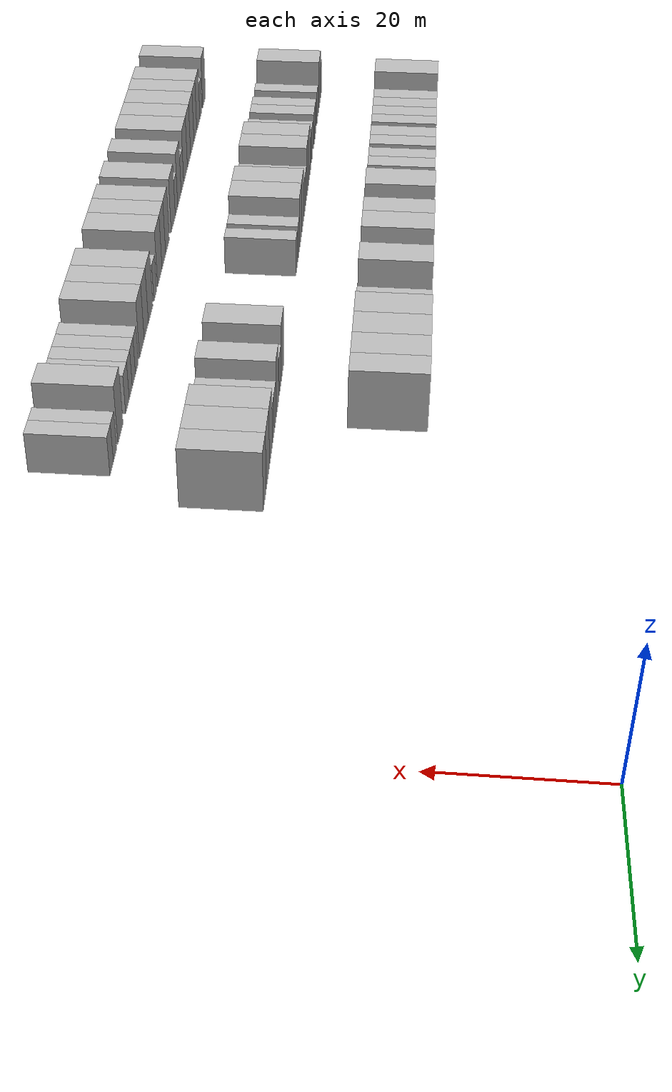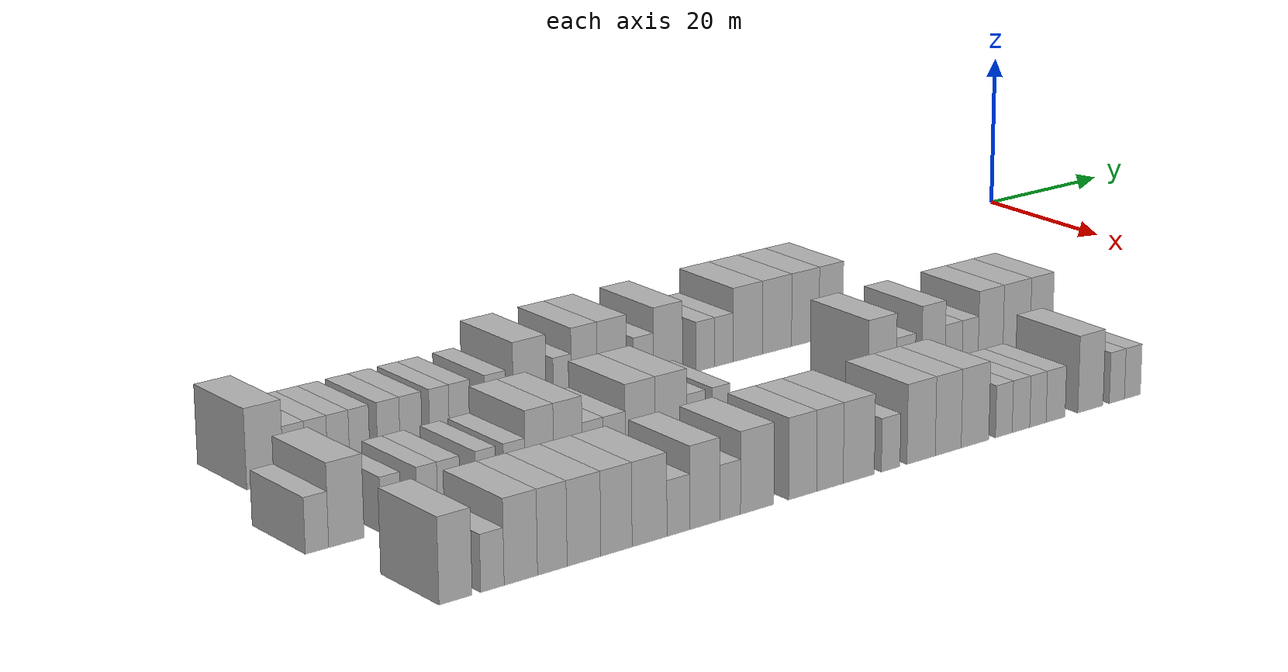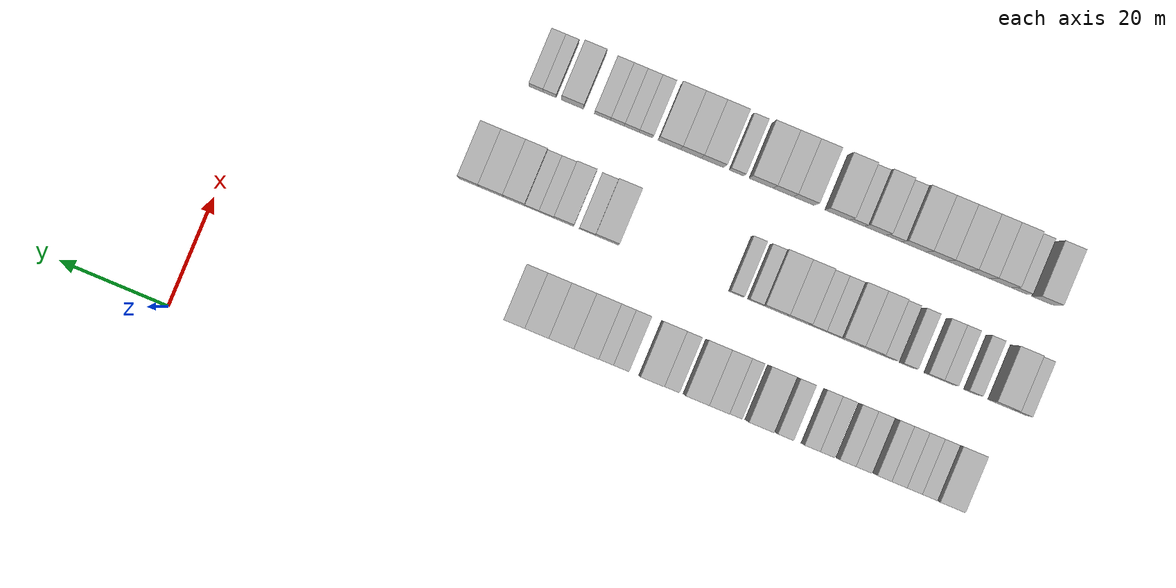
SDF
<sdf version="1.6">
 <world name="default">
  <model name="building_27">
   <static>1</static>
   <pose>25.0000 -134.0754 0 0.000000 0.000000 0.000000</pose>
   <link name="link">
    <pose>0 0 4.50 0 0 0</pose>
    <collision name="collision"><geometry><box><size>10.0000 4.4864 9.0000</size></box></geometry></collision>
    <visual name="visual">
     <cast_shadows>0</cast_shadows>
     <geometry><box><size>10.0000 4.4864 9.0000</size></box></geometry>
     <material>
      <script>
       <uri>model://HANNAS_wall/materials/scripts</uri>
       <uri>model://HANNAS_wall/materials/textures</uri>
       <name>vrc/HANNAS_wall</name>
      </script>
     </material>
    </visual>
   </link>
  </model>
  <model name="building_28">
   <static>1</static>
   <pose>25.0000 -130.4685 0 0.000000 0.000000 0.000000</pose>
   <link name="link">
    <pose>0 0 3.00 0 0 0</pose>
    <collision name="collision"><geometry><box><size>10.0000 2.7274 6.0000</size></box></geometry></collision>
    <visual name="visual">
     <cast_shadows>0</cast_shadows>
     <geometry><box><size>10.0000 2.7274 6.0000</size></box></geometry>
     <material>
      <script>
       <uri>model://HANNAS_wall/materials/scripts</uri>
       <uri>model://HANNAS_wall/materials/textures</uri>
       <name>vrc/HANNAS_wall</name>
      </script>
     </material>
    </visual>
   </link>
  </model>
  <model name="building_29">
   <static>1</static>
   <pose>25.0000 -127.7237 0 0.000000 0.000000 0.000000</pose>
   <link name="link">
    <pose>0 0 3.00 0 0 0</pose>
    <collision name="collision"><geometry><box><size>10.0000 2.7621 6.0000</size></box></geometry></collision>
    <visual name="visual">
     <cast_shadows>0</cast_shadows>
     <geometry><box><size>10.0000 2.7621 6.0000</size></box></geometry>
     <material>
      <script>
       <uri>model://HANNAS_wall/materials/scripts</uri>
       <uri>model://HANNAS_wall/materials/textures</uri>
       <name>vrc/HANNAS_wall</name>
      </script>
     </material>
    </visual>
   </link>
  </model>
  <model name="building_30">
   <static>1</static>
   <pose>25.0000 -124.9590 0 0.000000 0.000000 0.000000</pose>
   <link name="link">
    <pose>0 0 3.00 0 0 0</pose>
    <collision name="collision"><geometry><box><size>10.0000 2.7674 6.0000</size></box></geometry></collision>
    <visual name="visual">
     <cast_shadows>0</cast_shadows>
     <geometry><box><size>10.0000 2.7674 6.0000</size></box></geometry>
     <material>
      <script>
       <uri>model://HANNAS_wall/materials/scripts</uri>
       <uri>model://HANNAS_wall/materials/textures</uri>
       <name>vrc/HANNAS_wall</name>
      </script>
     </material>
    </visual>
   </link>
  </model>
  <model name="building_31">
   <static>1</static>
   <pose>25.0000 -122.2874 0 0.000000 0.000000 0.000000</pose>
   <link name="link">
    <pose>0 0 3.00 0 0 0</pose>
    <collision name="collision"><geometry><box><size>10.0000 2.5757 6.0000</size></box></geometry></collision>
    <visual name="visual">
     <cast_shadows>0</cast_shadows>
     <geometry><box><size>10.0000 2.5757 6.0000</size></box></geometry>
     <material>
      <script>
       <uri>model://HANNAS_wall/materials/scripts</uri>
       <uri>model://HANNAS_wall/materials/textures</uri>
       <name>vrc/HANNAS_wall</name>
      </script>
     </material>
    </visual>
   </link>
  </model>
  <model name="building_32">
   <static>1</static>
   <pose>25.0000 -118.5531 0 0.000000 0.000000 0.000000</pose>
   <link name="link">
    <pose>0 0 3.00 0 0 0</pose>
    <collision name="collision"><geometry><box><size>10.0000 2.8929 6.0000</size></box></geometry></collision>
    <visual name="visual">
     <cast_shadows>0</cast_shadows>
     <geometry><box><size>10.0000 2.8929 6.0000</size></box></geometry>
     <material>
      <script>
       <uri>model://HANNAS_wall/materials/scripts</uri>
       <uri>model://HANNAS_wall/materials/textures</uri>
       <name>vrc/HANNAS_wall</name>
      </script>
     </material>
    </visual>
   </link>
  </model>
  <model name="building_33">
   <static>1</static>
   <pose>25.0000 -115.6692 0 0.000000 0.000000 0.000000</pose>
   <link name="link">
    <pose>0 0 3.00 0 0 0</pose>
    <collision name="collision"><geometry><box><size>10.0000 2.8750 6.0000</size></box></geometry></collision>
    <visual name="visual">
     <cast_shadows>0</cast_shadows>
     <geometry><box><size>10.0000 2.8750 6.0000</size></box></geometry>
     <material>
      <script>
       <uri>model://HANNAS_wall/materials/scripts</uri>
       <uri>model://HANNAS_wall/materials/textures</uri>
       <name>vrc/HANNAS_wall</name>
      </script>
     </material>
    </visual>
   </link>
  </model>
  <model name="building_34">
   <static>1</static>
   <pose>25.0000 -111.9430 0 0.000000 0.000000 0.000000</pose>
   <link name="link">
    <pose>0 0 3.00 0 0 0</pose>
    <collision name="collision"><geometry><box><size>10.0000 2.5774 6.0000</size></box></geometry></collision>
    <visual name="visual">
     <cast_shadows>0</cast_shadows>
     <geometry><box><size>10.0000 2.5774 6.0000</size></box></geometry>
     <material>
      <script>
       <uri>model://HANNAS_wall/materials/scripts</uri>
       <uri>model://HANNAS_wall/materials/textures</uri>
       <name>vrc/HANNAS_wall</name>
      </script>
     </material>
    </visual>
   </link>
  </model>
  <model name="building_35">
   <static>1</static>
   <pose>25.0000 -109.2529 0 0.000000 0.000000 0.000000</pose>
   <link name="link">
    <pose>0 0 3.00 0 0 0</pose>
    <collision name="collision"><geometry><box><size>10.0000 2.8028 6.0000</size></box></geometry></collision>
    <visual name="visual">
     <cast_shadows>0</cast_shadows>
     <geometry><box><size>10.0000 2.8028 6.0000</size></box></geometry>
     <material>
      <script>
       <uri>model://HANNAS_wall/materials/scripts</uri>
       <uri>model://HANNAS_wall/materials/textures</uri>
       <name>vrc/HANNAS_wall</name>
      </script>
     </material>
    </visual>
   </link>
  </model>
  <model name="building_36">
   <static>1</static>
   <pose>25.0000 -104.4416 0 0.000000 0.000000 0.000000</pose>
   <link name="link">
    <pose>0 0 3.00 0 0 0</pose>
    <collision name="collision"><geometry><box><size>10.0000 2.8197 6.0000</size></box></geometry></collision>
    <visual name="visual">
     <cast_shadows>0</cast_shadows>
     <geometry><box><size>10.0000 2.8197 6.0000</size></box></geometry>
     <material>
      <script>
       <uri>model://HANNAS_wall/materials/scripts</uri>
       <uri>model://HANNAS_wall/materials/textures</uri>
       <name>vrc/HANNAS_wall</name>
      </script>
     </material>
    </visual>
   </link>
  </model>
  <model name="building_37">
   <static>1</static>
   <pose>25.0000 -99.7865 0 0.000000 0.000000 0.000000</pose>
   <link name="link">
    <pose>0 0 4.50 0 0 0</pose>
    <collision name="collision"><geometry><box><size>10.0000 4.4905 9.0000</size></box></geometry></collision>
    <visual name="visual">
     <cast_shadows>0</cast_shadows>
     <geometry><box><size>10.0000 4.4905 9.0000</size></box></geometry>
     <material>
      <script>
       <uri>model://HANNAS_wall/materials/scripts</uri>
       <uri>model://HANNAS_wall/materials/textures</uri>
       <name>vrc/HANNAS_wall</name>
      </script>
     </material>
    </visual>
   </link>
  </model>
  <model name="building_38">
   <static>1</static>
   <pose>25.0000 -95.2795 0 0.000000 0.000000 0.000000</pose>
   <link name="link">
    <pose>0 0 3.00 0 0 0</pose>
    <collision name="collision"><geometry><box><size>10.0000 2.5236 6.0000</size></box></geometry></collision>
    <visual name="visual">
     <cast_shadows>0</cast_shadows>
     <geometry><box><size>10.0000 2.5236 6.0000</size></box></geometry>
     <material>
      <script>
       <uri>model://HANNAS_wall/materials/scripts</uri>
       <uri>model://HANNAS_wall/materials/textures</uri>
       <name>vrc/HANNAS_wall</name>
      </script>
     </material>
    </visual>
   </link>
  </model>
  <model name="building_39">
   <static>1</static>
   <pose>25.0000 -92.2080 0 0.000000 0.000000 0.000000</pose>
   <link name="link">
    <pose>0 0 4.50 0 0 0</pose>
    <collision name="collision"><geometry><box><size>10.0000 3.6194 9.0000</size></box></geometry></collision>
    <visual name="visual">
     <cast_shadows>0</cast_shadows>
     <geometry><box><size>10.0000 3.6194 9.0000</size></box></geometry>
     <material>
      <script>
       <uri>model://HANNAS_wall/materials/scripts</uri>
       <uri>model://HANNAS_wall/materials/textures</uri>
       <name>vrc/HANNAS_wall</name>
      </script>
     </material>
    </visual>
   </link>
  </model>
  <model name="building_40">
   <static>1</static>
   <pose>25.0000 -88.2988 0 0.000000 0.000000 0.000000</pose>
   <link name="link">
    <pose>0 0 4.50 0 0 0</pose>
    <collision name="collision"><geometry><box><size>10.0000 4.1990 9.0000</size></box></geometry></collision>
    <visual name="visual">
     <cast_shadows>0</cast_shadows>
     <geometry><box><size>10.0000 4.1990 9.0000</size></box></geometry>
     <material>
      <script>
       <uri>model://HANNAS_wall/materials/scripts</uri>
       <uri>model://HANNAS_wall/materials/textures</uri>
       <name>vrc/HANNAS_wall</name>
      </script>
     </material>
    </visual>
   </link>
  </model>
  <model name="building_41">
   <static>1</static>
   <pose>25.0000 -83.7598 0 0.000000 0.000000 0.000000</pose>
   <link name="link">
    <pose>0 0 3.00 0 0 0</pose>
    <collision name="collision"><geometry><box><size>10.0000 2.8790 6.0000</size></box></geometry></collision>
    <visual name="visual">
     <cast_shadows>0</cast_shadows>
     <geometry><box><size>10.0000 2.8790 6.0000</size></box></geometry>
     <material>
      <script>
       <uri>model://HANNAS_wall/materials/scripts</uri>
       <uri>model://HANNAS_wall/materials/textures</uri>
       <name>vrc/HANNAS_wall</name>
      </script>
     </material>
    </visual>
   </link>
  </model>
  <model name="building_42">
   <static>1</static>
   <pose>25.0000 -80.1985 0 0.000000 0.000000 0.000000</pose>
   <link name="link">
    <pose>0 0 4.50 0 0 0</pose>
    <collision name="collision"><geometry><box><size>10.0000 4.2437 9.0000</size></box></geometry></collision>
    <visual name="visual">
     <cast_shadows>0</cast_shadows>
     <geometry><box><size>10.0000 4.2437 9.0000</size></box></geometry>
     <material>
      <script>
       <uri>model://HANNAS_wall/materials/scripts</uri>
       <uri>model://HANNAS_wall/materials/textures</uri>
       <name>vrc/HANNAS_wall</name>
      </script>
     </material>
    </visual>
   </link>
  </model>
  <model name="building_43">
   <static>1</static>
   <pose>25.0000 -74.6716 0 0.000000 0.000000 0.000000</pose>
   <link name="link">
    <pose>0 0 3.00 0 0 0</pose>
    <collision name="collision"><geometry><box><size>10.0000 2.8101 6.0000</size></box></geometry></collision>
    <visual name="visual">
     <cast_shadows>0</cast_shadows>
     <geometry><box><size>10.0000 2.8101 6.0000</size></box></geometry>
     <material>
      <script>
       <uri>model://HANNAS_wall/materials/scripts</uri>
       <uri>model://HANNAS_wall/materials/textures</uri>
       <name>vrc/HANNAS_wall</name>
      </script>
     </material>
    </visual>
   </link>
  </model>
  <model name="building_44">
   <static>1</static>
   <pose>25.0000 -71.8956 0 0.000000 0.000000 0.000000</pose>
   <link name="link">
    <pose>0 0 3.00 0 0 0</pose>
    <collision name="collision"><geometry><box><size>10.0000 2.7419 6.0000</size></box></geometry></collision>
    <visual name="visual">
     <cast_shadows>0</cast_shadows>
     <geometry><box><size>10.0000 2.7419 6.0000</size></box></geometry>
     <material>
      <script>
       <uri>model://HANNAS_wall/materials/scripts</uri>
       <uri>model://HANNAS_wall/materials/textures</uri>
       <name>vrc/HANNAS_wall</name>
      </script>
     </material>
    </visual>
   </link>
  </model>
  <model name="building_45">
   <static>1</static>
   <pose>25.0000 -68.2941 0 0.000000 0.000000 0.000000</pose>
   <link name="link">
    <pose>0 0 4.50 0 0 0</pose>
    <collision name="collision"><geometry><box><size>10.0000 4.4611 9.0000</size></box></geometry></collision>
    <visual name="visual">
     <cast_shadows>0</cast_shadows>
     <geometry><box><size>10.0000 4.4611 9.0000</size></box></geometry>
     <material>
      <script>
       <uri>model://HANNAS_wall/materials/scripts</uri>
       <uri>model://HANNAS_wall/materials/textures</uri>
       <name>vrc/HANNAS_wall</name>
      </script>
     </material>
    </visual>
   </link>
  </model>
  <model name="building_46">
   <static>1</static>
   <pose>25.0000 -63.8173 0 0.000000 0.000000 0.000000</pose>
   <link name="link">
    <pose>0 0 4.50 0 0 0</pose>
    <collision name="collision"><geometry><box><size>10.0000 4.4925 9.0000</size></box></geometry></collision>
    <visual name="visual">
     <cast_shadows>0</cast_shadows>
     <geometry><box><size>10.0000 4.4925 9.0000</size></box></geometry>
     <material>
      <script>
       <uri>model://HANNAS_wall/materials/scripts</uri>
       <uri>model://HANNAS_wall/materials/textures</uri>
       <name>vrc/HANNAS_wall</name>
      </script>
     </material>
    </visual>
   </link>
  </model>
  <model name="building_47">
   <static>1</static>
   <pose>25.0000 -59.4167 0 0.000000 0.000000 0.000000</pose>
   <link name="link">
    <pose>0 0 4.50 0 0 0</pose>
    <collision name="collision"><geometry><box><size>10.0000 4.3088 9.0000</size></box></geometry></collision>
    <visual name="visual">
     <cast_shadows>0</cast_shadows>
     <geometry><box><size>10.0000 4.3088 9.0000</size></box></geometry>
     <material>
      <script>
       <uri>model://HANNAS_wall/materials/scripts</uri>
       <uri>model://HANNAS_wall/materials/textures</uri>
       <name>vrc/HANNAS_wall</name>
      </script>
     </material>
    </visual>
   </link>
  </model>
  <model name="building_48">
   <static>1</static>
   <pose>25.0000 -55.3724 0 0.000000 0.000000 0.000000</pose>
   <link name="link">
    <pose>0 0 4.50 0 0 0</pose>
    <collision name="collision"><geometry><box><size>10.0000 3.7798 9.0000</size></box></geometry></collision>
    <visual name="visual">
     <cast_shadows>0</cast_shadows>
     <geometry><box><size>10.0000 3.7798 9.0000</size></box></geometry>
     <material>
      <script>
       <uri>model://HANNAS_wall/materials/scripts</uri>
       <uri>model://HANNAS_wall/materials/textures</uri>
       <name>vrc/HANNAS_wall</name>
      </script>
     </material>
    </visual>
   </link>
  </model>
  <model name="building_134">
   <static>1</static>
   <pose>44.0000 -139.7905 0 0.000000 0.000000 0.000000</pose>
   <link name="link">
    <pose>0 0 3.00 0 0 0</pose>
    <collision name="collision"><geometry><box><size>10.0000 2.7422 6.0000</size></box></geometry></collision>
    <visual name="visual">
     <cast_shadows>0</cast_shadows>
     <geometry><box><size>10.0000 2.7422 6.0000</size></box></geometry>
     <material>
      <script>
       <uri>model://HANNAS_wall/materials/scripts</uri>
       <uri>model://HANNAS_wall/materials/textures</uri>
       <name>vrc/HANNAS_wall</name>
      </script>
     </material>
    </visual>
   </link>
  </model>
  <model name="building_135">
   <static>1</static>
   <pose>44.0000 -136.3121 0 0.000000 0.000000 0.000000</pose>
   <link name="link">
    <pose>0 0 4.50 0 0 0</pose>
    <collision name="collision"><geometry><box><size>10.0000 4.2145 9.0000</size></box></geometry></collision>
    <visual name="visual">
     <cast_shadows>0</cast_shadows>
     <geometry><box><size>10.0000 4.2145 9.0000</size></box></geometry>
     <material>
      <script>
       <uri>model://HANNAS_wall/materials/scripts</uri>
       <uri>model://HANNAS_wall/materials/textures</uri>
       <name>vrc/HANNAS_wall</name>
      </script>
     </material>
    </visual>
   </link>
  </model>
  <model name="building_136">
   <static>1</static>
   <pose>44.0000 -130.9855 0 0.000000 0.000000 0.000000</pose>
   <link name="link">
    <pose>0 0 3.00 0 0 0</pose>
    <collision name="collision"><geometry><box><size>10.0000 2.4388 6.0000</size></box></geometry></collision>
    <visual name="visual">
     <cast_shadows>0</cast_shadows>
     <geometry><box><size>10.0000 2.4388 6.0000</size></box></geometry>
     <material>
      <script>
       <uri>model://HANNAS_wall/materials/scripts</uri>
       <uri>model://HANNAS_wall/materials/textures</uri>
       <name>vrc/HANNAS_wall</name>
      </script>
     </material>
    </visual>
   </link>
  </model>
  <model name="building_137">
   <static>1</static>
   <pose>44.0000 -126.5085 0 0.000000 0.000000 0.000000</pose>
   <link name="link">
    <pose>0 0 3.00 0 0 0</pose>
    <collision name="collision"><geometry><box><size>10.0000 2.5152 6.0000</size></box></geometry></collision>
    <visual name="visual">
     <cast_shadows>0</cast_shadows>
     <geometry><box><size>10.0000 2.5152 6.0000</size></box></geometry>
     <material>
      <script>
       <uri>model://HANNAS_wall/materials/scripts</uri>
       <uri>model://HANNAS_wall/materials/textures</uri>
       <name>vrc/HANNAS_wall</name>
      </script>
     </material>
    </visual>
   </link>
  </model>
  <model name="building_138">
   <static>1</static>
   <pose>44.0000 -123.8586 0 0.000000 0.000000 0.000000</pose>
   <link name="link">
    <pose>0 0 3.00 0 0 0</pose>
    <collision name="collision"><geometry><box><size>10.0000 2.7845 6.0000</size></box></geometry></collision>
    <visual name="visual">
     <cast_shadows>0</cast_shadows>
     <geometry><box><size>10.0000 2.7845 6.0000</size></box></geometry>
     <material>
      <script>
       <uri>model://HANNAS_wall/materials/scripts</uri>
       <uri>model://HANNAS_wall/materials/textures</uri>
       <name>vrc/HANNAS_wall</name>
      </script>
     </material>
    </visual>
   </link>
  </model>
  <model name="building_139">
   <static>1</static>
   <pose>44.0000 -119.2019 0 0.000000 0.000000 0.000000</pose>
   <link name="link">
    <pose>0 0 3.00 0 0 0</pose>
    <collision name="collision"><geometry><box><size>10.0000 2.5288 6.0000</size></box></geometry></collision>
    <visual name="visual">
     <cast_shadows>0</cast_shadows>
     <geometry><box><size>10.0000 2.5288 6.0000</size></box></geometry>
     <material>
      <script>
       <uri>model://HANNAS_wall/materials/scripts</uri>
       <uri>model://HANNAS_wall/materials/textures</uri>
       <name>vrc/HANNAS_wall</name>
      </script>
     </material>
    </visual>
   </link>
  </model>
  <model name="building_140">
   <static>1</static>
   <pose>44.0000 -115.5582 0 0.000000 0.000000 0.000000</pose>
   <link name="link">
    <pose>0 0 3.00 0 0 0</pose>
    <collision name="collision"><geometry><box><size>10.0000 2.7586 6.0000</size></box></geometry></collision>
    <visual name="visual">
     <cast_shadows>0</cast_shadows>
     <geometry><box><size>10.0000 2.7586 6.0000</size></box></geometry>
     <material>
      <script>
       <uri>model://HANNAS_wall/materials/scripts</uri>
       <uri>model://HANNAS_wall/materials/textures</uri>
       <name>vrc/HANNAS_wall</name>
      </script>
     </material>
    </visual>
   </link>
  </model>
  <model name="building_141">
   <static>1</static>
   <pose>44.0000 -112.3480 0 0.000000 0.000000 0.000000</pose>
   <link name="link">
    <pose>0 0 4.50 0 0 0</pose>
    <collision name="collision"><geometry><box><size>10.0000 3.6618 9.0000</size></box></geometry></collision>
    <visual name="visual">
     <cast_shadows>0</cast_shadows>
     <geometry><box><size>10.0000 3.6618 9.0000</size></box></geometry>
     <material>
      <script>
       <uri>model://HANNAS_wall/materials/scripts</uri>
       <uri>model://HANNAS_wall/materials/textures</uri>
       <name>vrc/HANNAS_wall</name>
      </script>
     </material>
    </visual>
   </link>
  </model>
  <model name="building_142">
   <static>1</static>
   <pose>44.0000 -108.6507 0 0.000000 0.000000 0.000000</pose>
   <link name="link">
    <pose>0 0 4.50 0 0 0</pose>
    <collision name="collision"><geometry><box><size>10.0000 3.7327 9.0000</size></box></geometry></collision>
    <visual name="visual">
     <cast_shadows>0</cast_shadows>
     <geometry><box><size>10.0000 3.7327 9.0000</size></box></geometry>
     <material>
      <script>
       <uri>model://HANNAS_wall/materials/scripts</uri>
       <uri>model://HANNAS_wall/materials/textures</uri>
       <name>vrc/HANNAS_wall</name>
      </script>
     </material>
    </visual>
   </link>
  </model>
  <model name="building_143">
   <static>1</static>
   <pose>44.0000 -105.3891 0 0.000000 0.000000 0.000000</pose>
   <link name="link">
    <pose>0 0 3.00 0 0 0</pose>
    <collision name="collision"><geometry><box><size>10.0000 2.7906 6.0000</size></box></geometry></collision>
    <visual name="visual">
     <cast_shadows>0</cast_shadows>
     <geometry><box><size>10.0000 2.7906 6.0000</size></box></geometry>
     <material>
      <script>
       <uri>model://HANNAS_wall/materials/scripts</uri>
       <uri>model://HANNAS_wall/materials/textures</uri>
       <name>vrc/HANNAS_wall</name>
      </script>
     </material>
    </visual>
   </link>
  </model>
  <model name="building_144">
   <static>1</static>
   <pose>44.0000 -102.5262 0 0.000000 0.000000 0.000000</pose>
   <link name="link">
    <pose>0 0 3.00 0 0 0</pose>
    <collision name="collision"><geometry><box><size>10.0000 2.9353 6.0000</size></box></geometry></collision>
    <visual name="visual">
     <cast_shadows>0</cast_shadows>
     <geometry><box><size>10.0000 2.9353 6.0000</size></box></geometry>
     <material>
      <script>
       <uri>model://HANNAS_wall/materials/scripts</uri>
       <uri>model://HANNAS_wall/materials/textures</uri>
       <name>vrc/HANNAS_wall</name>
      </script>
     </material>
    </visual>
   </link>
  </model>
  <model name="building_145">
   <static>1</static>
   <pose>44.0000 -99.0295 0 0.000000 0.000000 0.000000</pose>
   <link name="link">
    <pose>0 0 4.50 0 0 0</pose>
    <collision name="collision"><geometry><box><size>10.0000 4.0581 9.0000</size></box></geometry></collision>
    <visual name="visual">
     <cast_shadows>0</cast_shadows>
     <geometry><box><size>10.0000 4.0581 9.0000</size></box></geometry>
     <material>
      <script>
       <uri>model://HANNAS_wall/materials/scripts</uri>
       <uri>model://HANNAS_wall/materials/textures</uri>
       <name>vrc/HANNAS_wall</name>
      </script>
     </material>
    </visual>
   </link>
  </model>
  <model name="building_146">
   <static>1</static>
   <pose>44.0000 -94.8456 0 0.000000 0.000000 0.000000</pose>
   <link name="link">
    <pose>0 0 4.50 0 0 0</pose>
    <collision name="collision"><geometry><box><size>10.0000 4.3096 9.0000</size></box></geometry></collision>
    <visual name="visual">
     <cast_shadows>0</cast_shadows>
     <geometry><box><size>10.0000 4.3096 9.0000</size></box></geometry>
     <material>
      <script>
       <uri>model://HANNAS_wall/materials/scripts</uri>
       <uri>model://HANNAS_wall/materials/textures</uri>
       <name>vrc/HANNAS_wall</name>
      </script>
     </material>
    </visual>
   </link>
  </model>
  <model name="building_147">
   <static>1</static>
   <pose>44.0000 -91.3898 0 0.000000 0.000000 0.000000</pose>
   <link name="link">
    <pose>0 0 3.00 0 0 0</pose>
    <collision name="collision"><geometry><box><size>10.0000 2.6020 6.0000</size></box></geometry></collision>
    <visual name="visual">
     <cast_shadows>0</cast_shadows>
     <geometry><box><size>10.0000 2.6020 6.0000</size></box></geometry>
     <material>
      <script>
       <uri>model://HANNAS_wall/materials/scripts</uri>
       <uri>model://HANNAS_wall/materials/textures</uri>
       <name>vrc/HANNAS_wall</name>
      </script>
     </material>
    </visual>
   </link>
  </model>
  <model name="building_148">
   <static>1</static>
   <pose>44.0000 -87.8581 0 0.000000 0.000000 0.000000</pose>
   <link name="link">
    <pose>0 0 3.00 0 0 0</pose>
    <collision name="collision"><geometry><box><size>10.0000 2.4614 6.0000</size></box></geometry></collision>
    <visual name="visual">
     <cast_shadows>0</cast_shadows>
     <geometry><box><size>10.0000 2.4614 6.0000</size></box></geometry>
     <material>
      <script>
       <uri>model://HANNAS_wall/materials/scripts</uri>
       <uri>model://HANNAS_wall/materials/textures</uri>
       <name>vrc/HANNAS_wall</name>
      </script>
     </material>
    </visual>
   </link>
  </model>
  <model name="building_149">
   <static>1</static>
   <pose>44.0000 -64.2632 0 0.000000 0.000000 0.000000</pose>
   <link name="link">
    <pose>0 0 4.50 0 0 0</pose>
    <collision name="collision"><geometry><box><size>10.0000 4.2428 9.0000</size></box></geometry></collision>
    <visual name="visual">
     <cast_shadows>0</cast_shadows>
     <geometry><box><size>10.0000 4.2428 9.0000</size></box></geometry>
     <material>
      <script>
       <uri>model://HANNAS_wall/materials/scripts</uri>
       <uri>model://HANNAS_wall/materials/textures</uri>
       <name>vrc/HANNAS_wall</name>
      </script>
     </material>
    </visual>
   </link>
  </model>
  <model name="building_150">
   <static>1</static>
   <pose>44.0000 -60.6771 0 0.000000 0.000000 0.000000</pose>
   <link name="link">
    <pose>0 0 3.00 0 0 0</pose>
    <collision name="collision"><geometry><box><size>10.0000 2.9295 6.0000</size></box></geometry></collision>
    <visual name="visual">
     <cast_shadows>0</cast_shadows>
     <geometry><box><size>10.0000 2.9295 6.0000</size></box></geometry>
     <material>
      <script>
       <uri>model://HANNAS_wall/materials/scripts</uri>
       <uri>model://HANNAS_wall/materials/textures</uri>
       <name>vrc/HANNAS_wall</name>
      </script>
     </material>
    </visual>
   </link>
  </model>
  <model name="building_151">
   <static>1</static>
   <pose>44.0000 -56.3960 0 0.000000 0.000000 0.000000</pose>
   <link name="link">
    <pose>0 0 4.50 0 0 0</pose>
    <collision name="collision"><geometry><box><size>10.0000 3.6327 9.0000</size></box></geometry></collision>
    <visual name="visual">
     <cast_shadows>0</cast_shadows>
     <geometry><box><size>10.0000 3.6327 9.0000</size></box></geometry>
     <material>
      <script>
       <uri>model://HANNAS_wall/materials/scripts</uri>
       <uri>model://HANNAS_wall/materials/textures</uri>
       <name>vrc/HANNAS_wall</name>
      </script>
     </material>
    </visual>
   </link>
  </model>
  <model name="building_152">
   <static>1</static>
   <pose>44.0000 -53.2183 0 0.000000 0.000000 0.000000</pose>
   <link name="link">
    <pose>0 0 3.00 0 0 0</pose>
    <collision name="collision"><geometry><box><size>10.0000 2.7226 6.0000</size></box></geometry></collision>
    <visual name="visual">
     <cast_shadows>0</cast_shadows>
     <geometry><box><size>10.0000 2.7226 6.0000</size></box></geometry>
     <material>
      <script>
       <uri>model://HANNAS_wall/materials/scripts</uri>
       <uri>model://HANNAS_wall/materials/textures</uri>
       <name>vrc/HANNAS_wall</name>
      </script>
     </material>
    </visual>
   </link>
  </model>
  <model name="building_153">
   <static>1</static>
   <pose>44.0000 -50.5792 0 0.000000 0.000000 0.000000</pose>
   <link name="link">
    <pose>0 0 3.00 0 0 0</pose>
    <collision name="collision"><geometry><box><size>10.0000 2.5557 6.0000</size></box></geometry></collision>
    <visual name="visual">
     <cast_shadows>0</cast_shadows>
     <geometry><box><size>10.0000 2.5557 6.0000</size></box></geometry>
     <material>
      <script>
       <uri>model://HANNAS_wall/materials/scripts</uri>
       <uri>model://HANNAS_wall/materials/textures</uri>
       <name>vrc/HANNAS_wall</name>
      </script>
     </material>
    </visual>
   </link>
  </model>
  <model name="building_154">
   <static>1</static>
   <pose>44.0000 -47.3036 0 0.000000 0.000000 0.000000</pose>
   <link name="link">
    <pose>0 0 4.50 0 0 0</pose>
    <collision name="collision"><geometry><box><size>10.0000 3.9953 9.0000</size></box></geometry></collision>
    <visual name="visual">
     <cast_shadows>0</cast_shadows>
     <geometry><box><size>10.0000 3.9953 9.0000</size></box></geometry>
     <material>
      <script>
       <uri>model://HANNAS_wall/materials/scripts</uri>
       <uri>model://HANNAS_wall/materials/textures</uri>
       <name>vrc/HANNAS_wall</name>
      </script>
     </material>
    </visual>
   </link>
  </model>
  <model name="building_155">
   <static>1</static>
   <pose>44.0000 -43.0928 0 0.000000 0.000000 0.000000</pose>
   <link name="link">
    <pose>0 0 4.50 0 0 0</pose>
    <collision name="collision"><geometry><box><size>10.0000 4.4262 9.0000</size></box></geometry></collision>
    <visual name="visual">
     <cast_shadows>0</cast_shadows>
     <geometry><box><size>10.0000 4.4262 9.0000</size></box></geometry>
     <material>
      <script>
       <uri>model://HANNAS_wall/materials/scripts</uri>
       <uri>model://HANNAS_wall/materials/textures</uri>
       <name>vrc/HANNAS_wall</name>
      </script>
     </material>
    </visual>
   </link>
  </model>
  <model name="building_156">
   <static>1</static>
   <pose>44.0000 -39.0251 0 0.000000 0.000000 0.000000</pose>
   <link name="link">
    <pose>0 0 4.50 0 0 0</pose>
    <collision name="collision"><geometry><box><size>10.0000 3.7093 9.0000</size></box></geometry></collision>
    <visual name="visual">
     <cast_shadows>0</cast_shadows>
     <geometry><box><size>10.0000 3.7093 9.0000</size></box></geometry>
     <material>
      <script>
       <uri>model://HANNAS_wall/materials/scripts</uri>
       <uri>model://HANNAS_wall/materials/textures</uri>
       <name>vrc/HANNAS_wall</name>
      </script>
     </material>
    </visual>
   </link>
  </model>
  <model name="building_256">
   <static>1</static>
   <pose>63.0000 -136.2662 0 0.000000 0.000000 0.000000</pose>
   <link name="link">
    <pose>0 0 4.50 0 0 0</pose>
    <collision name="collision"><geometry><box><size>10.0000 3.8608 9.0000</size></box></geometry></collision>
    <visual name="visual">
     <cast_shadows>0</cast_shadows>
     <geometry><box><size>10.0000 3.8608 9.0000</size></box></geometry>
     <material>
      <script>
       <uri>model://HANNAS_wall/materials/scripts</uri>
       <uri>model://HANNAS_wall/materials/textures</uri>
       <name>vrc/HANNAS_wall</name>
      </script>
     </material>
    </visual>
   </link>
  </model>
  <model name="building_257">
   <static>1</static>
   <pose>63.0000 -131.9468 0 0.000000 0.000000 0.000000</pose>
   <link name="link">
    <pose>0 0 3.00 0 0 0</pose>
    <collision name="collision"><geometry><box><size>10.0000 2.7778 6.0000</size></box></geometry></collision>
    <visual name="visual">
     <cast_shadows>0</cast_shadows>
     <geometry><box><size>10.0000 2.7778 6.0000</size></box></geometry>
     <material>
      <script>
       <uri>model://HANNAS_wall/materials/scripts</uri>
       <uri>model://HANNAS_wall/materials/textures</uri>
       <name>vrc/HANNAS_wall</name>
      </script>
     </material>
    </visual>
   </link>
  </model>
  <model name="building_258">
   <static>1</static>
   <pose>63.0000 -128.5586 0 0.000000 0.000000 0.000000</pose>
   <link name="link">
    <pose>0 0 4.50 0 0 0</pose>
    <collision name="collision"><geometry><box><size>10.0000 3.9986 9.0000</size></box></geometry></collision>
    <visual name="visual">
     <cast_shadows>0</cast_shadows>
     <geometry><box><size>10.0000 3.9986 9.0000</size></box></geometry>
     <material>
      <script>
       <uri>model://HANNAS_wall/materials/scripts</uri>
       <uri>model://HANNAS_wall/materials/textures</uri>
       <name>vrc/HANNAS_wall</name>
      </script>
     </material>
    </visual>
   </link>
  </model>
  <model name="building_259">
   <static>1</static>
   <pose>63.0000 -124.7588 0 0.000000 0.000000 0.000000</pose>
   <link name="link">
    <pose>0 0 4.50 0 0 0</pose>
    <collision name="collision"><geometry><box><size>10.0000 3.6011 9.0000</size></box></geometry></collision>
    <visual name="visual">
     <cast_shadows>0</cast_shadows>
     <geometry><box><size>10.0000 3.6011 9.0000</size></box></geometry>
     <material>
      <script>
       <uri>model://HANNAS_wall/materials/scripts</uri>
       <uri>model://HANNAS_wall/materials/textures</uri>
       <name>vrc/HANNAS_wall</name>
      </script>
     </material>
    </visual>
   </link>
  </model>
  <model name="building_260">
   <static>1</static>
   <pose>63.0000 -120.8779 0 0.000000 0.000000 0.000000</pose>
   <link name="link">
    <pose>0 0 4.50 0 0 0</pose>
    <collision name="collision"><geometry><box><size>10.0000 4.1608 9.0000</size></box></geometry></collision>
    <visual name="visual">
     <cast_shadows>0</cast_shadows>
     <geometry><box><size>10.0000 4.1608 9.0000</size></box></geometry>
     <material>
      <script>
       <uri>model://HANNAS_wall/materials/scripts</uri>
       <uri>model://HANNAS_wall/materials/textures</uri>
       <name>vrc/HANNAS_wall</name>
      </script>
     </material>
    </visual>
   </link>
  </model>
  <model name="building_261">
   <static>1</static>
   <pose>63.0000 -116.8420 0 0.000000 0.000000 0.000000</pose>
   <link name="link">
    <pose>0 0 4.50 0 0 0</pose>
    <collision name="collision"><geometry><box><size>10.0000 3.9109 9.0000</size></box></geometry></collision>
    <visual name="visual">
     <cast_shadows>0</cast_shadows>
     <geometry><box><size>10.0000 3.9109 9.0000</size></box></geometry>
     <material>
      <script>
       <uri>model://HANNAS_wall/materials/scripts</uri>
       <uri>model://HANNAS_wall/materials/textures</uri>
       <name>vrc/HANNAS_wall</name>
      </script>
     </material>
    </visual>
   </link>
  </model>
  <model name="building_262">
   <static>1</static>
   <pose>63.0000 -112.6669 0 0.000000 0.000000 0.000000</pose>
   <link name="link">
    <pose>0 0 4.50 0 0 0</pose>
    <collision name="collision"><geometry><box><size>10.0000 4.4393 9.0000</size></box></geometry></collision>
    <visual name="visual">
     <cast_shadows>0</cast_shadows>
     <geometry><box><size>10.0000 4.4393 9.0000</size></box></geometry>
     <material>
      <script>
       <uri>model://HANNAS_wall/materials/scripts</uri>
       <uri>model://HANNAS_wall/materials/textures</uri>
       <name>vrc/HANNAS_wall</name>
      </script>
     </material>
    </visual>
   </link>
  </model>
  <model name="building_263">
   <static>1</static>
   <pose>63.0000 -108.9774 0 0.000000 0.000000 0.000000</pose>
   <link name="link">
    <pose>0 0 3.00 0 0 0</pose>
    <collision name="collision"><geometry><box><size>10.0000 2.9396 6.0000</size></box></geometry></collision>
    <visual name="visual">
     <cast_shadows>0</cast_shadows>
     <geometry><box><size>10.0000 2.9396 6.0000</size></box></geometry>
     <material>
      <script>
       <uri>model://HANNAS_wall/materials/scripts</uri>
       <uri>model://HANNAS_wall/materials/textures</uri>
       <name>vrc/HANNAS_wall</name>
      </script>
     </material>
    </visual>
   </link>
  </model>
  <model name="building_264">
   <static>1</static>
   <pose>63.0000 -105.5482 0 0.000000 0.000000 0.000000</pose>
   <link name="link">
    <pose>0 0 4.50 0 0 0</pose>
    <collision name="collision"><geometry><box><size>10.0000 3.9188 9.0000</size></box></geometry></collision>
    <visual name="visual">
     <cast_shadows>0</cast_shadows>
     <geometry><box><size>10.0000 3.9188 9.0000</size></box></geometry>
     <material>
      <script>
       <uri>model://HANNAS_wall/materials/scripts</uri>
       <uri>model://HANNAS_wall/materials/textures</uri>
       <name>vrc/HANNAS_wall</name>
      </script>
     </material>
    </visual>
   </link>
  </model>
  <model name="building_265">
   <static>1</static>
   <pose>63.0000 -102.2224 0 0.000000 0.000000 0.000000</pose>
   <link name="link">
    <pose>0 0 3.00 0 0 0</pose>
    <collision name="collision"><geometry><box><size>10.0000 2.7329 6.0000</size></box></geometry></collision>
    <visual name="visual">
     <cast_shadows>0</cast_shadows>
     <geometry><box><size>10.0000 2.7329 6.0000</size></box></geometry>
     <material>
      <script>
       <uri>model://HANNAS_wall/materials/scripts</uri>
       <uri>model://HANNAS_wall/materials/textures</uri>
       <name>vrc/HANNAS_wall</name>
      </script>
     </material>
    </visual>
   </link>
  </model>
  <model name="building_266">
   <static>1</static>
   <pose>63.0000 -98.6242 0 0.000000 0.000000 0.000000</pose>
   <link name="link">
    <pose>0 0 4.50 0 0 0</pose>
    <collision name="collision"><geometry><box><size>10.0000 4.4635 9.0000</size></box></geometry></collision>
    <visual name="visual">
     <cast_shadows>0</cast_shadows>
     <geometry><box><size>10.0000 4.4635 9.0000</size></box></geometry>
     <material>
      <script>
       <uri>model://HANNAS_wall/materials/scripts</uri>
       <uri>model://HANNAS_wall/materials/textures</uri>
       <name>vrc/HANNAS_wall</name>
      </script>
     </material>
    </visual>
   </link>
  </model>
  <model name="building_267">
   <static>1</static>
   <pose>63.0000 -92.4789 0 0.000000 0.000000 0.000000</pose>
   <link name="link">
    <pose>0 0 4.50 0 0 0</pose>
    <collision name="collision"><geometry><box><size>10.0000 3.8271 9.0000</size></box></geometry></collision>
    <visual name="visual">
     <cast_shadows>0</cast_shadows>
     <geometry><box><size>10.0000 3.8271 9.0000</size></box></geometry>
     <material>
      <script>
       <uri>model://HANNAS_wall/materials/scripts</uri>
       <uri>model://HANNAS_wall/materials/textures</uri>
       <name>vrc/HANNAS_wall</name>
      </script>
     </material>
    </visual>
   </link>
  </model>
  <model name="building_268">
   <static>1</static>
   <pose>63.0000 -88.7123 0 0.000000 0.000000 0.000000</pose>
   <link name="link">
    <pose>0 0 4.50 0 0 0</pose>
    <collision name="collision"><geometry><box><size>10.0000 3.7062 9.0000</size></box></geometry></collision>
    <visual name="visual">
     <cast_shadows>0</cast_shadows>
     <geometry><box><size>10.0000 3.7062 9.0000</size></box></geometry>
     <material>
      <script>
       <uri>model://HANNAS_wall/materials/scripts</uri>
       <uri>model://HANNAS_wall/materials/textures</uri>
       <name>vrc/HANNAS_wall</name>
      </script>
     </material>
    </visual>
   </link>
  </model>
  <model name="building_269">
   <static>1</static>
   <pose>63.0000 -84.6684 0 0.000000 0.000000 0.000000</pose>
   <link name="link">
    <pose>0 0 4.50 0 0 0</pose>
    <collision name="collision"><geometry><box><size>10.0000 4.3816 9.0000</size></box></geometry></collision>
    <visual name="visual">
     <cast_shadows>0</cast_shadows>
     <geometry><box><size>10.0000 4.3816 9.0000</size></box></geometry>
     <material>
      <script>
       <uri>model://HANNAS_wall/materials/scripts</uri>
       <uri>model://HANNAS_wall/materials/textures</uri>
       <name>vrc/HANNAS_wall</name>
      </script>
     </material>
    </visual>
   </link>
  </model>
  <model name="building_270">
   <static>1</static>
   <pose>63.0000 -80.1488 0 0.000000 0.000000 0.000000</pose>
   <link name="link">
    <pose>0 0 3.00 0 0 0</pose>
    <collision name="collision"><geometry><box><size>10.0000 2.6576 6.0000</size></box></geometry></collision>
    <visual name="visual">
     <cast_shadows>0</cast_shadows>
     <geometry><box><size>10.0000 2.6576 6.0000</size></box></geometry>
     <material>
      <script>
       <uri>model://HANNAS_wall/materials/scripts</uri>
       <uri>model://HANNAS_wall/materials/textures</uri>
       <name>vrc/HANNAS_wall</name>
      </script>
     </material>
    </visual>
   </link>
  </model>
  <model name="building_271">
   <static>1</static>
   <pose>63.0000 -75.7652 0 0.000000 0.000000 0.000000</pose>
   <link name="link">
    <pose>0 0 4.50 0 0 0</pose>
    <collision name="collision"><geometry><box><size>10.0000 4.1094 9.0000</size></box></geometry></collision>
    <visual name="visual">
     <cast_shadows>0</cast_shadows>
     <geometry><box><size>10.0000 4.1094 9.0000</size></box></geometry>
     <material>
      <script>
       <uri>model://HANNAS_wall/materials/scripts</uri>
       <uri>model://HANNAS_wall/materials/textures</uri>
       <name>vrc/HANNAS_wall</name>
      </script>
     </material>
    </visual>
   </link>
  </model>
  <model name="building_272">
   <static>1</static>
   <pose>63.0000 -71.7953 0 0.000000 0.000000 0.000000</pose>
   <link name="link">
    <pose>0 0 4.50 0 0 0</pose>
    <collision name="collision"><geometry><box><size>10.0000 3.8305 9.0000</size></box></geometry></collision>
    <visual name="visual">
     <cast_shadows>0</cast_shadows>
     <geometry><box><size>10.0000 3.8305 9.0000</size></box></geometry>
     <material>
      <script>
       <uri>model://HANNAS_wall/materials/scripts</uri>
       <uri>model://HANNAS_wall/materials/textures</uri>
       <name>vrc/HANNAS_wall</name>
      </script>
     </material>
    </visual>
   </link>
  </model>
  <model name="building_273">
   <static>1</static>
   <pose>63.0000 -67.8193 0 0.000000 0.000000 0.000000</pose>
   <link name="link">
    <pose>0 0 4.50 0 0 0</pose>
    <collision name="collision"><geometry><box><size>10.0000 4.1215 9.0000</size></box></geometry></collision>
    <visual name="visual">
     <cast_shadows>0</cast_shadows>
     <geometry><box><size>10.0000 4.1215 9.0000</size></box></geometry>
     <material>
      <script>
       <uri>model://HANNAS_wall/materials/scripts</uri>
       <uri>model://HANNAS_wall/materials/textures</uri>
       <name>vrc/HANNAS_wall</name>
      </script>
     </material>
    </visual>
   </link>
  </model>
  <model name="building_274">
   <static>1</static>
   <pose>63.0000 -63.4930 0 0.000000 0.000000 0.000000</pose>
   <link name="link">
    <pose>0 0 3.00 0 0 0</pose>
    <collision name="collision"><geometry><box><size>10.0000 2.5311 6.0000</size></box></geometry></collision>
    <visual name="visual">
     <cast_shadows>0</cast_shadows>
     <geometry><box><size>10.0000 2.5311 6.0000</size></box></geometry>
     <material>
      <script>
       <uri>model://HANNAS_wall/materials/scripts</uri>
       <uri>model://HANNAS_wall/materials/textures</uri>
       <name>vrc/HANNAS_wall</name>
      </script>
     </material>
    </visual>
   </link>
  </model>
  <model name="building_275">
   <static>1</static>
   <pose>63.0000 -60.8844 0 0.000000 0.000000 0.000000</pose>
   <link name="link">
    <pose>0 0 3.00 0 0 0</pose>
    <collision name="collision"><geometry><box><size>10.0000 2.6860 6.0000</size></box></geometry></collision>
    <visual name="visual">
     <cast_shadows>0</cast_shadows>
     <geometry><box><size>10.0000 2.6860 6.0000</size></box></geometry>
     <material>
      <script>
       <uri>model://HANNAS_wall/materials/scripts</uri>
       <uri>model://HANNAS_wall/materials/textures</uri>
       <name>vrc/HANNAS_wall</name>
      </script>
     </material>
    </visual>
   </link>
  </model>
  <model name="building_276">
   <static>1</static>
   <pose>63.0000 -58.2828 0 0.000000 0.000000 0.000000</pose>
   <link name="link">
    <pose>0 0 3.00 0 0 0</pose>
    <collision name="collision"><geometry><box><size>10.0000 2.5172 6.0000</size></box></geometry></collision>
    <visual name="visual">
     <cast_shadows>0</cast_shadows>
     <geometry><box><size>10.0000 2.5172 6.0000</size></box></geometry>
     <material>
      <script>
       <uri>model://HANNAS_wall/materials/scripts</uri>
       <uri>model://HANNAS_wall/materials/textures</uri>
       <name>vrc/HANNAS_wall</name>
      </script>
     </material>
    </visual>
   </link>
  </model>
  <model name="building_277">
   <static>1</static>
   <pose>63.0000 -55.5456 0 0.000000 0.000000 0.000000</pose>
   <link name="link">
    <pose>0 0 3.00 0 0 0</pose>
    <collision name="collision"><geometry><box><size>10.0000 2.9572 6.0000</size></box></geometry></collision>
    <visual name="visual">
     <cast_shadows>0</cast_shadows>
     <geometry><box><size>10.0000 2.9572 6.0000</size></box></geometry>
     <material>
      <script>
       <uri>model://HANNAS_wall/materials/scripts</uri>
       <uri>model://HANNAS_wall/materials/textures</uri>
       <name>vrc/HANNAS_wall</name>
      </script>
     </material>
    </visual>
   </link>
  </model>
  <model name="building_278">
   <static>1</static>
   <pose>63.0000 -50.0655 0 0.000000 0.000000 0.000000</pose>
   <link name="link">
    <pose>0 0 4.50 0 0 0</pose>
    <collision name="collision"><geometry><box><size>10.0000 4.0030 9.0000</size></box></geometry></collision>
    <visual name="visual">
     <cast_shadows>0</cast_shadows>
     <geometry><box><size>10.0000 4.0030 9.0000</size></box></geometry>
     <material>
      <script>
       <uri>model://HANNAS_wall/materials/scripts</uri>
       <uri>model://HANNAS_wall/materials/textures</uri>
       <name>vrc/HANNAS_wall</name>
      </script>
     </material>
    </visual>
   </link>
  </model>
  <model name="building_279">
   <static>1</static>
   <pose>63.0000 -45.8536 0 0.000000 0.000000 0.000000</pose>
   <link name="link">
    <pose>0 0 3.00 0 0 0</pose>
    <collision name="collision"><geometry><box><size>10.0000 2.4208 6.0000</size></box></geometry></collision>
    <visual name="visual">
     <cast_shadows>0</cast_shadows>
     <geometry><box><size>10.0000 2.4208 6.0000</size></box></geometry>
     <material>
      <script>
       <uri>model://HANNAS_wall/materials/scripts</uri>
       <uri>model://HANNAS_wall/materials/textures</uri>
       <name>vrc/HANNAS_wall</name>
      </script>
     </material>
    </visual>
   </link>
  </model>
  <model name="building_280">
   <static>1</static>
   <pose>63.0000 -43.3512 0 0.000000 0.000000 0.000000</pose>
   <link name="link">
    <pose>0 0 3.00 0 0 0</pose>
    <collision name="collision"><geometry><box><size>10.0000 2.5840 6.0000</size></box></geometry></collision>
    <visual name="visual">
     <cast_shadows>0</cast_shadows>
     <geometry><box><size>10.0000 2.5840 6.0000</size></box></geometry>
     <material>
      <script>
       <uri>model://HANNAS_wall/materials/scripts</uri>
       <uri>model://HANNAS_wall/materials/textures</uri>
       <name>vrc/HANNAS_wall</name>
      </script>
     </material>
    </visual>
   </link>
  </model>
 </world>
</sdf>
